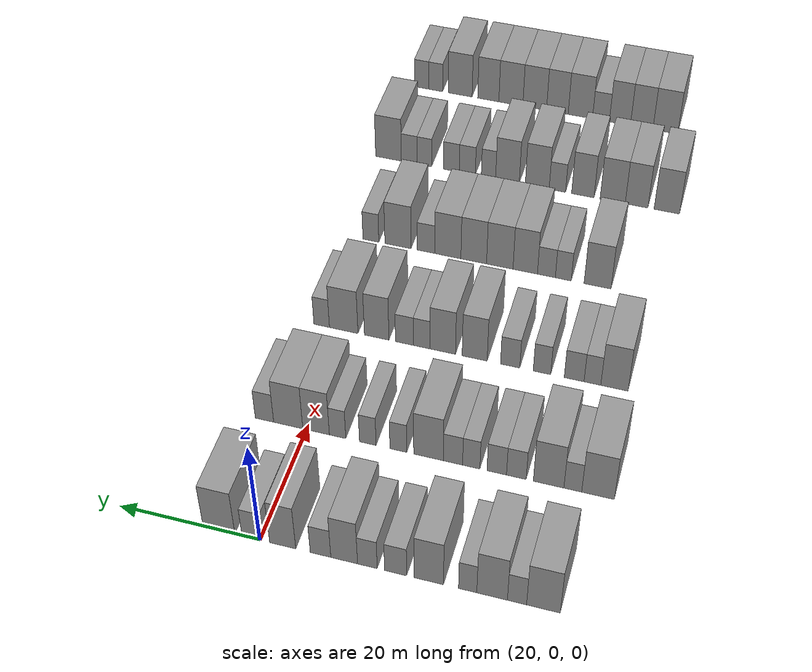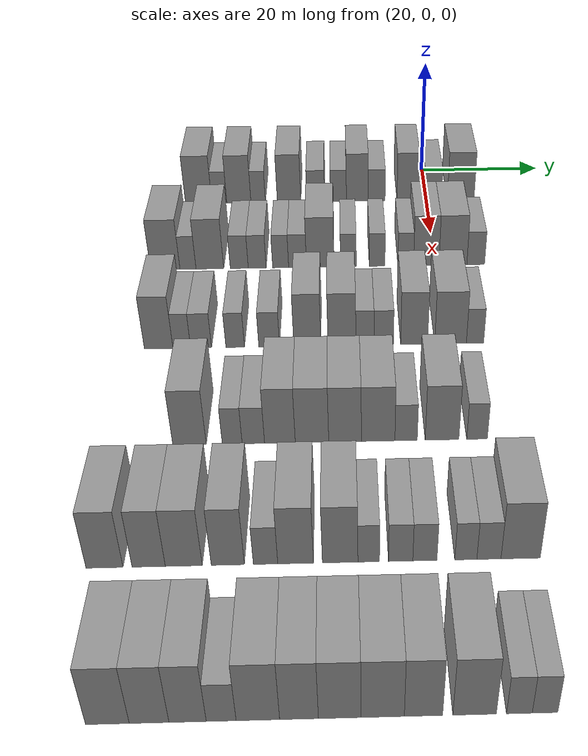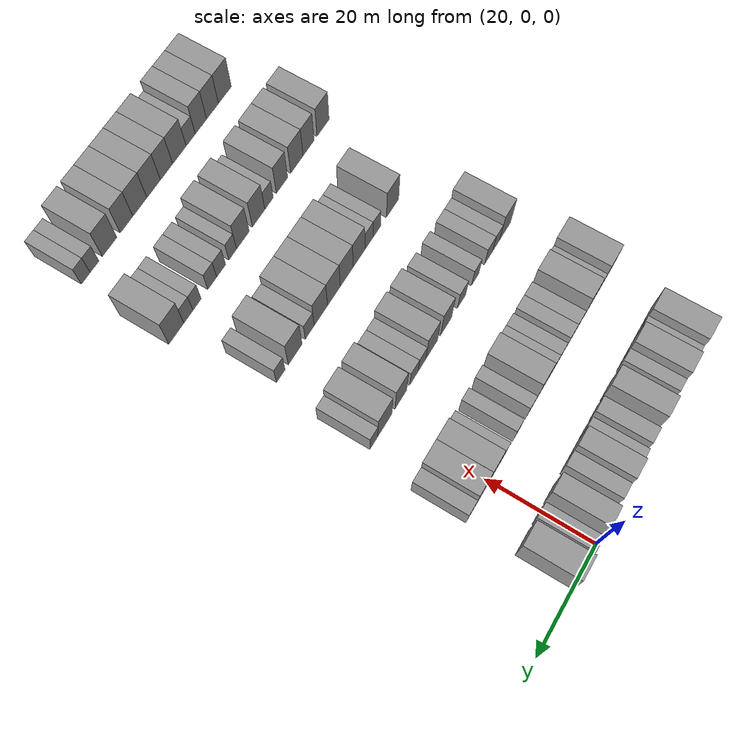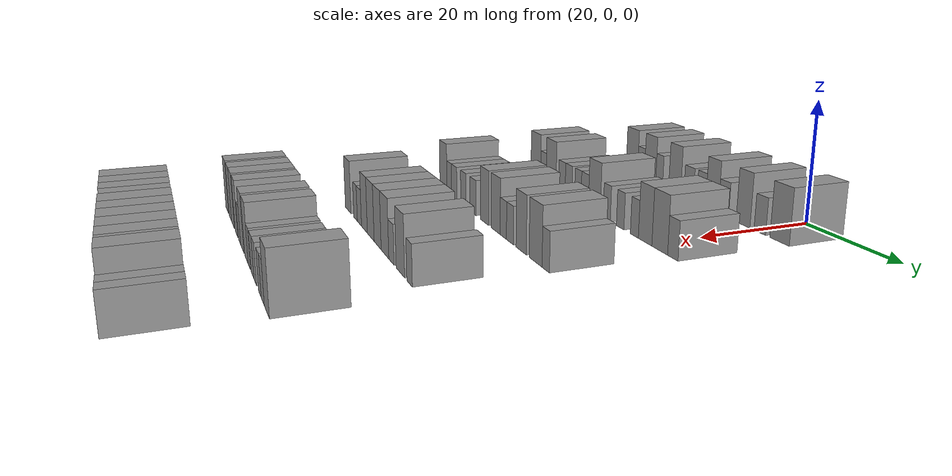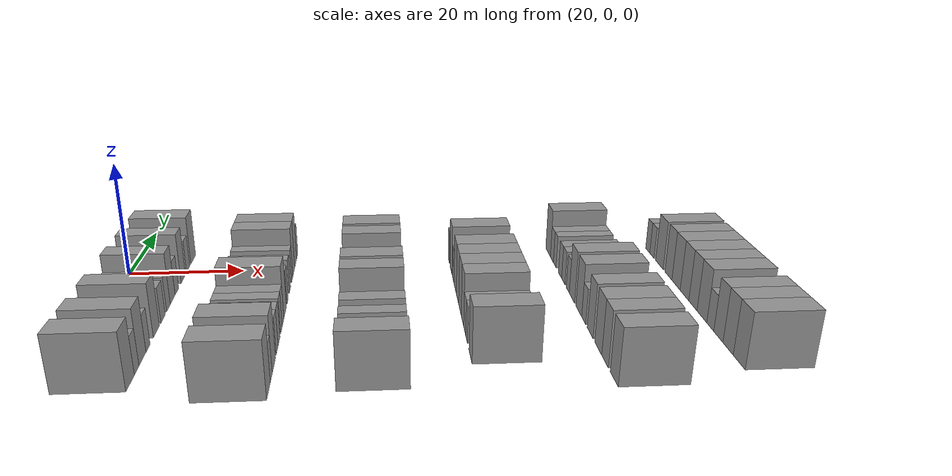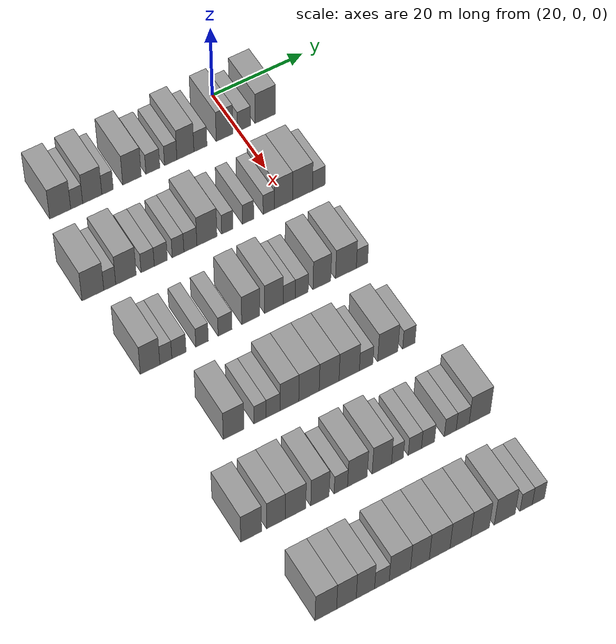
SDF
<sdf version="1.6">
 <world name="default">
  <model name="building_77">
   <static>1</static>
   <pose>25.0000 -38.1234 0 0.000000 0.000000 0.000000</pose>
   <link name="link">
    <pose>0 0 4.50 0 0 0</pose>
    <collision name="collision"><geometry><box><size>10.0000 4.3851 9.0000</size></box></geometry></collision>
    <visual name="visual">
     <cast_shadows>0</cast_shadows>
     <geometry><box><size>10.0000 4.3851 9.0000</size></box></geometry>
     <material>
      <script>
       <uri>model://grey_wall/materials/scripts</uri>
       <uri>model://grey_wall/materials/textures</uri>
       <name>vrc/grey_wall</name>
      </script>
     </material>
    </visual>
   </link>
  </model>
  <model name="building_78">
   <static>1</static>
   <pose>25.0000 -34.6785 0 0.000000 0.000000 0.000000</pose>
   <link name="link">
    <pose>0 0 3.00 0 0 0</pose>
    <collision name="collision"><geometry><box><size>10.0000 2.5047 6.0000</size></box></geometry></collision>
    <visual name="visual">
     <cast_shadows>0</cast_shadows>
     <geometry><box><size>10.0000 2.5047 6.0000</size></box></geometry>
     <material>
      <script>
       <uri>model://grey_wall/materials/scripts</uri>
       <uri>model://grey_wall/materials/textures</uri>
       <name>vrc/grey_wall</name>
      </script>
     </material>
    </visual>
   </link>
  </model>
  <model name="building_79">
   <static>1</static>
   <pose>25.0000 -31.4091 0 0.000000 0.000000 0.000000</pose>
   <link name="link">
    <pose>0 0 4.50 0 0 0</pose>
    <collision name="collision"><geometry><box><size>10.0000 4.0342 9.0000</size></box></geometry></collision>
    <visual name="visual">
     <cast_shadows>0</cast_shadows>
     <geometry><box><size>10.0000 4.0342 9.0000</size></box></geometry>
     <material>
      <script>
       <uri>model://grey_wall/materials/scripts</uri>
       <uri>model://grey_wall/materials/textures</uri>
       <name>vrc/grey_wall</name>
      </script>
     </material>
    </visual>
   </link>
  </model>
  <model name="building_80">
   <static>1</static>
   <pose>25.0000 -28.1832 0 0.000000 0.000000 0.000000</pose>
   <link name="link">
    <pose>0 0 3.00 0 0 0</pose>
    <collision name="collision"><geometry><box><size>10.0000 2.4177 6.0000</size></box></geometry></collision>
    <visual name="visual">
     <cast_shadows>0</cast_shadows>
     <geometry><box><size>10.0000 2.4177 6.0000</size></box></geometry>
     <material>
      <script>
       <uri>model://grey_wall/materials/scripts</uri>
       <uri>model://grey_wall/materials/textures</uri>
       <name>vrc/grey_wall</name>
      </script>
     </material>
    </visual>
   </link>
  </model>
  <model name="building_81">
   <static>1</static>
   <pose>25.0000 -23.0104 0 0.000000 0.000000 0.000000</pose>
   <link name="link">
    <pose>0 0 4.50 0 0 0</pose>
    <collision name="collision"><geometry><box><size>10.0000 3.9279 9.0000</size></box></geometry></collision>
    <visual name="visual">
     <cast_shadows>0</cast_shadows>
     <geometry><box><size>10.0000 3.9279 9.0000</size></box></geometry>
     <material>
      <script>
       <uri>model://grey_wall/materials/scripts</uri>
       <uri>model://grey_wall/materials/textures</uri>
       <name>vrc/grey_wall</name>
      </script>
     </material>
    </visual>
   </link>
  </model>
  <model name="building_82">
   <static>1</static>
   <pose>25.0000 -18.5566 0 0.000000 0.000000 0.000000</pose>
   <link name="link">
    <pose>0 0 3.00 0 0 0</pose>
    <collision name="collision"><geometry><box><size>10.0000 2.9796 6.0000</size></box></geometry></collision>
    <visual name="visual">
     <cast_shadows>0</cast_shadows>
     <geometry><box><size>10.0000 2.9796 6.0000</size></box></geometry>
     <material>
      <script>
       <uri>model://grey_wall/materials/scripts</uri>
       <uri>model://grey_wall/materials/textures</uri>
       <name>vrc/grey_wall</name>
      </script>
     </material>
    </visual>
   </link>
  </model>
  <model name="building_83">
   <static>1</static>
   <pose>25.0000 -14.7358 0 0.000000 0.000000 0.000000</pose>
   <link name="link">
    <pose>0 0 3.00 0 0 0</pose>
    <collision name="collision"><geometry><box><size>10.0000 2.6619 6.0000</size></box></geometry></collision>
    <visual name="visual">
     <cast_shadows>0</cast_shadows>
     <geometry><box><size>10.0000 2.6619 6.0000</size></box></geometry>
     <material>
      <script>
       <uri>model://grey_wall/materials/scripts</uri>
       <uri>model://grey_wall/materials/textures</uri>
       <name>vrc/grey_wall</name>
      </script>
     </material>
    </visual>
   </link>
  </model>
  <model name="building_84">
   <static>1</static>
   <pose>25.0000 -11.5752 0 0.000000 0.000000 0.000000</pose>
   <link name="link">
    <pose>0 0 4.50 0 0 0</pose>
    <collision name="collision"><geometry><box><size>10.0000 3.6592 9.0000</size></box></geometry></collision>
    <visual name="visual">
     <cast_shadows>0</cast_shadows>
     <geometry><box><size>10.0000 3.6592 9.0000</size></box></geometry>
     <material>
      <script>
       <uri>model://grey_wall/materials/scripts</uri>
       <uri>model://grey_wall/materials/textures</uri>
       <name>vrc/grey_wall</name>
      </script>
     </material>
    </visual>
   </link>
  </model>
  <model name="building_85">
   <static>1</static>
   <pose>25.0000 -8.3293 0 0.000000 0.000000 0.000000</pose>
   <link name="link">
    <pose>0 0 3.00 0 0 0</pose>
    <collision name="collision"><geometry><box><size>10.0000 2.8327 6.0000</size></box></geometry></collision>
    <visual name="visual">
     <cast_shadows>0</cast_shadows>
     <geometry><box><size>10.0000 2.8327 6.0000</size></box></geometry>
     <material>
      <script>
       <uri>model://grey_wall/materials/scripts</uri>
       <uri>model://grey_wall/materials/textures</uri>
       <name>vrc/grey_wall</name>
      </script>
     </material>
    </visual>
   </link>
  </model>
  <model name="building_86">
   <static>1</static>
   <pose>25.0000 -3.1027 0 0.000000 0.000000 0.000000</pose>
   <link name="link">
    <pose>0 0 4.50 0 0 0</pose>
    <collision name="collision"><geometry><box><size>10.0000 3.6206 9.0000</size></box></geometry></collision>
    <visual name="visual">
     <cast_shadows>0</cast_shadows>
     <geometry><box><size>10.0000 3.6206 9.0000</size></box></geometry>
     <material>
      <script>
       <uri>model://grey_wall/materials/scripts</uri>
       <uri>model://grey_wall/materials/textures</uri>
       <name>vrc/grey_wall</name>
      </script>
     </material>
    </visual>
   </link>
  </model>
  <model name="building_87">
   <static>1</static>
   <pose>25.0000 1.1421 0 0.000000 0.000000 0.000000</pose>
   <link name="link">
    <pose>0 0 3.00 0 0 0</pose>
    <collision name="collision"><geometry><box><size>10.0000 2.8690 6.0000</size></box></geometry></collision>
    <visual name="visual">
     <cast_shadows>0</cast_shadows>
     <geometry><box><size>10.0000 2.8690 6.0000</size></box></geometry>
     <material>
      <script>
       <uri>model://grey_wall/materials/scripts</uri>
       <uri>model://grey_wall/materials/textures</uri>
       <name>vrc/grey_wall</name>
      </script>
     </material>
    </visual>
   </link>
  </model>
  <model name="building_88">
   <static>1</static>
   <pose>25.0000 5.8203 0 0.000000 0.000000 0.000000</pose>
   <link name="link">
    <pose>0 0 4.50 0 0 0</pose>
    <collision name="collision"><geometry><box><size>10.0000 4.4875 9.0000</size></box></geometry></collision>
    <visual name="visual">
     <cast_shadows>0</cast_shadows>
     <geometry><box><size>10.0000 4.4875 9.0000</size></box></geometry>
     <material>
      <script>
       <uri>model://grey_wall/materials/scripts</uri>
       <uri>model://grey_wall/materials/textures</uri>
       <name>vrc/grey_wall</name>
      </script>
     </material>
    </visual>
   </link>
  </model>
  <model name="building_242">
   <static>1</static>
   <pose>44.0000 -41.3822 0 0.000000 0.000000 0.000000</pose>
   <link name="link">
    <pose>0 0 4.50 0 0 0</pose>
    <collision name="collision"><geometry><box><size>10.0000 4.4811 9.0000</size></box></geometry></collision>
    <visual name="visual">
     <cast_shadows>0</cast_shadows>
     <geometry><box><size>10.0000 4.4811 9.0000</size></box></geometry>
     <material>
      <script>
       <uri>model://grey_wall/materials/scripts</uri>
       <uri>model://grey_wall/materials/textures</uri>
       <name>vrc/grey_wall</name>
      </script>
     </material>
    </visual>
   </link>
  </model>
  <model name="building_243">
   <static>1</static>
   <pose>44.0000 -37.9151 0 0.000000 0.000000 0.000000</pose>
   <link name="link">
    <pose>0 0 3.00 0 0 0</pose>
    <collision name="collision"><geometry><box><size>10.0000 2.4532 6.0000</size></box></geometry></collision>
    <visual name="visual">
     <cast_shadows>0</cast_shadows>
     <geometry><box><size>10.0000 2.4532 6.0000</size></box></geometry>
     <material>
      <script>
       <uri>model://grey_wall/materials/scripts</uri>
       <uri>model://grey_wall/materials/textures</uri>
       <name>vrc/grey_wall</name>
      </script>
     </material>
    </visual>
   </link>
  </model>
  <model name="building_244">
   <static>1</static>
   <pose>44.0000 -34.5697 0 0.000000 0.000000 0.000000</pose>
   <link name="link">
    <pose>0 0 4.50 0 0 0</pose>
    <collision name="collision"><geometry><box><size>10.0000 4.2376 9.0000</size></box></geometry></collision>
    <visual name="visual">
     <cast_shadows>0</cast_shadows>
     <geometry><box><size>10.0000 4.2376 9.0000</size></box></geometry>
     <material>
      <script>
       <uri>model://grey_wall/materials/scripts</uri>
       <uri>model://grey_wall/materials/textures</uri>
       <name>vrc/grey_wall</name>
      </script>
     </material>
    </visual>
   </link>
  </model>
  <model name="building_245">
   <static>1</static>
   <pose>44.0000 -30.0746 0 0.000000 0.000000 0.000000</pose>
   <link name="link">
    <pose>0 0 3.00 0 0 0</pose>
    <collision name="collision"><geometry><box><size>10.0000 2.7525 6.0000</size></box></geometry></collision>
    <visual name="visual">
     <cast_shadows>0</cast_shadows>
     <geometry><box><size>10.0000 2.7525 6.0000</size></box></geometry>
     <material>
      <script>
       <uri>model://grey_wall/materials/scripts</uri>
       <uri>model://grey_wall/materials/textures</uri>
       <name>vrc/grey_wall</name>
      </script>
     </material>
    </visual>
   </link>
  </model>
  <model name="building_246">
   <static>1</static>
   <pose>44.0000 -27.3279 0 0.000000 0.000000 0.000000</pose>
   <link name="link">
    <pose>0 0 3.00 0 0 0</pose>
    <collision name="collision"><geometry><box><size>10.0000 2.7408 6.0000</size></box></geometry></collision>
    <visual name="visual">
     <cast_shadows>0</cast_shadows>
     <geometry><box><size>10.0000 2.7408 6.0000</size></box></geometry>
     <material>
      <script>
       <uri>model://grey_wall/materials/scripts</uri>
       <uri>model://grey_wall/materials/textures</uri>
       <name>vrc/grey_wall</name>
      </script>
     </material>
    </visual>
   </link>
  </model>
  <model name="building_247">
   <static>1</static>
   <pose>44.0000 -23.7330 0 0.000000 0.000000 0.000000</pose>
   <link name="link">
    <pose>0 0 3.00 0 0 0</pose>
    <collision name="collision"><geometry><box><size>10.0000 2.4491 6.0000</size></box></geometry></collision>
    <visual name="visual">
     <cast_shadows>0</cast_shadows>
     <geometry><box><size>10.0000 2.4491 6.0000</size></box></geometry>
     <material>
      <script>
       <uri>model://grey_wall/materials/scripts</uri>
       <uri>model://grey_wall/materials/textures</uri>
       <name>vrc/grey_wall</name>
      </script>
     </material>
    </visual>
   </link>
  </model>
  <model name="building_248">
   <static>1</static>
   <pose>44.0000 -21.1385 0 0.000000 0.000000 0.000000</pose>
   <link name="link">
    <pose>0 0 3.00 0 0 0</pose>
    <collision name="collision"><geometry><box><size>10.0000 2.7399 6.0000</size></box></geometry></collision>
    <visual name="visual">
     <cast_shadows>0</cast_shadows>
     <geometry><box><size>10.0000 2.7399 6.0000</size></box></geometry>
     <material>
      <script>
       <uri>model://grey_wall/materials/scripts</uri>
       <uri>model://grey_wall/materials/textures</uri>
       <name>vrc/grey_wall</name>
      </script>
     </material>
    </visual>
   </link>
  </model>
  <model name="building_249">
   <static>1</static>
   <pose>44.0000 -17.6541 0 0.000000 0.000000 0.000000</pose>
   <link name="link">
    <pose>0 0 4.50 0 0 0</pose>
    <collision name="collision"><geometry><box><size>10.0000 4.2288 9.0000</size></box></geometry></collision>
    <visual name="visual">
     <cast_shadows>0</cast_shadows>
     <geometry><box><size>10.0000 4.2288 9.0000</size></box></geometry>
     <material>
      <script>
       <uri>model://grey_wall/materials/scripts</uri>
       <uri>model://grey_wall/materials/textures</uri>
       <name>vrc/grey_wall</name>
      </script>
     </material>
    </visual>
   </link>
  </model>
  <model name="building_250">
   <static>1</static>
   <pose>44.0000 -13.3273 0 0.000000 0.000000 0.000000</pose>
   <link name="link">
    <pose>0 0 3.00 0 0 0</pose>
    <collision name="collision"><geometry><box><size>10.0000 2.4249 6.0000</size></box></geometry></collision>
    <visual name="visual">
     <cast_shadows>0</cast_shadows>
     <geometry><box><size>10.0000 2.4249 6.0000</size></box></geometry>
     <material>
      <script>
       <uri>model://grey_wall/materials/scripts</uri>
       <uri>model://grey_wall/materials/textures</uri>
       <name>vrc/grey_wall</name>
      </script>
     </material>
    </visual>
   </link>
  </model>
  <model name="building_251">
   <static>1</static>
   <pose>44.0000 -8.9117 0 0.000000 0.000000 0.000000</pose>
   <link name="link">
    <pose>0 0 3.00 0 0 0</pose>
    <collision name="collision"><geometry><box><size>10.0000 2.4062 6.0000</size></box></geometry></collision>
    <visual name="visual">
     <cast_shadows>0</cast_shadows>
     <geometry><box><size>10.0000 2.4062 6.0000</size></box></geometry>
     <material>
      <script>
       <uri>model://grey_wall/materials/scripts</uri>
       <uri>model://grey_wall/materials/textures</uri>
       <name>vrc/grey_wall</name>
      </script>
     </material>
    </visual>
   </link>
  </model>
  <model name="building_252">
   <static>1</static>
   <pose>44.0000 -4.5066 0 0.000000 0.000000 0.000000</pose>
   <link name="link">
    <pose>0 0 3.00 0 0 0</pose>
    <collision name="collision"><geometry><box><size>10.0000 2.4039 6.0000</size></box></geometry></collision>
    <visual name="visual">
     <cast_shadows>0</cast_shadows>
     <geometry><box><size>10.0000 2.4039 6.0000</size></box></geometry>
     <material>
      <script>
       <uri>model://grey_wall/materials/scripts</uri>
       <uri>model://grey_wall/materials/textures</uri>
       <name>vrc/grey_wall</name>
      </script>
     </material>
    </visual>
   </link>
  </model>
  <model name="building_253">
   <static>1</static>
   <pose>44.0000 -1.3485 0 0.000000 0.000000 0.000000</pose>
   <link name="link">
    <pose>0 0 4.50 0 0 0</pose>
    <collision name="collision"><geometry><box><size>10.0000 3.9124 9.0000</size></box></geometry></collision>
    <visual name="visual">
     <cast_shadows>0</cast_shadows>
     <geometry><box><size>10.0000 3.9124 9.0000</size></box></geometry>
     <material>
      <script>
       <uri>model://grey_wall/materials/scripts</uri>
       <uri>model://grey_wall/materials/textures</uri>
       <name>vrc/grey_wall</name>
      </script>
     </material>
    </visual>
   </link>
  </model>
  <model name="building_254">
   <static>1</static>
   <pose>44.0000 2.7650 0 0.000000 0.000000 0.000000</pose>
   <link name="link">
    <pose>0 0 4.50 0 0 0</pose>
    <collision name="collision"><geometry><box><size>10.0000 4.3145 9.0000</size></box></geometry></collision>
    <visual name="visual">
     <cast_shadows>0</cast_shadows>
     <geometry><box><size>10.0000 4.3145 9.0000</size></box></geometry>
     <material>
      <script>
       <uri>model://grey_wall/materials/scripts</uri>
       <uri>model://grey_wall/materials/textures</uri>
       <name>vrc/grey_wall</name>
      </script>
     </material>
    </visual>
   </link>
  </model>
  <model name="building_255">
   <static>1</static>
   <pose>44.0000 6.2912 0 0.000000 0.000000 0.000000</pose>
   <link name="link">
    <pose>0 0 3.00 0 0 0</pose>
    <collision name="collision"><geometry><box><size>10.0000 2.7380 6.0000</size></box></geometry></collision>
    <visual name="visual">
     <cast_shadows>0</cast_shadows>
     <geometry><box><size>10.0000 2.7380 6.0000</size></box></geometry>
     <material>
      <script>
       <uri>model://grey_wall/materials/scripts</uri>
       <uri>model://grey_wall/materials/textures</uri>
       <name>vrc/grey_wall</name>
      </script>
     </material>
    </visual>
   </link>
  </model>
  <model name="building_420">
   <static>1</static>
   <pose>63.0000 -39.9859 0 0.000000 0.000000 0.000000</pose>
   <link name="link">
    <pose>0 0 4.50 0 0 0</pose>
    <collision name="collision"><geometry><box><size>10.0000 3.9625 9.0000</size></box></geometry></collision>
    <visual name="visual">
     <cast_shadows>0</cast_shadows>
     <geometry><box><size>10.0000 3.9625 9.0000</size></box></geometry>
     <material>
      <script>
       <uri>model://grey_wall/materials/scripts</uri>
       <uri>model://grey_wall/materials/textures</uri>
       <name>vrc/grey_wall</name>
      </script>
     </material>
    </visual>
   </link>
  </model>
  <model name="building_421">
   <static>1</static>
   <pose>63.0000 -36.7809 0 0.000000 0.000000 0.000000</pose>
   <link name="link">
    <pose>0 0 3.00 0 0 0</pose>
    <collision name="collision"><geometry><box><size>10.0000 2.4475 6.0000</size></box></geometry></collision>
    <visual name="visual">
     <cast_shadows>0</cast_shadows>
     <geometry><box><size>10.0000 2.4475 6.0000</size></box></geometry>
     <material>
      <script>
       <uri>model://grey_wall/materials/scripts</uri>
       <uri>model://grey_wall/materials/textures</uri>
       <name>vrc/grey_wall</name>
      </script>
     </material>
    </visual>
   </link>
  </model>
  <model name="building_422">
   <static>1</static>
   <pose>63.0000 -34.1074 0 0.000000 0.000000 0.000000</pose>
   <link name="link">
    <pose>0 0 3.00 0 0 0</pose>
    <collision name="collision"><geometry><box><size>10.0000 2.8996 6.0000</size></box></geometry></collision>
    <visual name="visual">
     <cast_shadows>0</cast_shadows>
     <geometry><box><size>10.0000 2.8996 6.0000</size></box></geometry>
     <material>
      <script>
       <uri>model://grey_wall/materials/scripts</uri>
       <uri>model://grey_wall/materials/textures</uri>
       <name>vrc/grey_wall</name>
      </script>
     </material>
    </visual>
   </link>
  </model>
  <model name="building_423">
   <static>1</static>
   <pose>63.0000 -29.3668 0 0.000000 0.000000 0.000000</pose>
   <link name="link">
    <pose>0 0 3.00 0 0 0</pose>
    <collision name="collision"><geometry><box><size>10.0000 2.5815 6.0000</size></box></geometry></collision>
    <visual name="visual">
     <cast_shadows>0</cast_shadows>
     <geometry><box><size>10.0000 2.5815 6.0000</size></box></geometry>
     <material>
      <script>
       <uri>model://grey_wall/materials/scripts</uri>
       <uri>model://grey_wall/materials/textures</uri>
       <name>vrc/grey_wall</name>
      </script>
     </material>
    </visual>
   </link>
  </model>
  <model name="building_424">
   <static>1</static>
   <pose>63.0000 -24.6372 0 0.000000 0.000000 0.000000</pose>
   <link name="link">
    <pose>0 0 3.00 0 0 0</pose>
    <collision name="collision"><geometry><box><size>10.0000 2.8778 6.0000</size></box></geometry></collision>
    <visual name="visual">
     <cast_shadows>0</cast_shadows>
     <geometry><box><size>10.0000 2.8778 6.0000</size></box></geometry>
     <material>
      <script>
       <uri>model://grey_wall/materials/scripts</uri>
       <uri>model://grey_wall/materials/textures</uri>
       <name>vrc/grey_wall</name>
      </script>
     </material>
    </visual>
   </link>
  </model>
  <model name="building_425">
   <static>1</static>
   <pose>63.0000 -19.3167 0 0.000000 0.000000 0.000000</pose>
   <link name="link">
    <pose>0 0 4.50 0 0 0</pose>
    <collision name="collision"><geometry><box><size>10.0000 3.7631 9.0000</size></box></geometry></collision>
    <visual name="visual">
     <cast_shadows>0</cast_shadows>
     <geometry><box><size>10.0000 3.7631 9.0000</size></box></geometry>
     <material>
      <script>
       <uri>model://grey_wall/materials/scripts</uri>
       <uri>model://grey_wall/materials/textures</uri>
       <name>vrc/grey_wall</name>
      </script>
     </material>
    </visual>
   </link>
  </model>
  <model name="building_426">
   <static>1</static>
   <pose>63.0000 -14.4906 0 0.000000 0.000000 0.000000</pose>
   <link name="link">
    <pose>0 0 4.50 0 0 0</pose>
    <collision name="collision"><geometry><box><size>10.0000 3.8891 9.0000</size></box></geometry></collision>
    <visual name="visual">
     <cast_shadows>0</cast_shadows>
     <geometry><box><size>10.0000 3.8891 9.0000</size></box></geometry>
     <material>
      <script>
       <uri>model://grey_wall/materials/scripts</uri>
       <uri>model://grey_wall/materials/textures</uri>
       <name>vrc/grey_wall</name>
      </script>
     </material>
    </visual>
   </link>
  </model>
  <model name="building_427">
   <static>1</static>
   <pose>63.0000 -11.2849 0 0.000000 0.000000 0.000000</pose>
   <link name="link">
    <pose>0 0 3.00 0 0 0</pose>
    <collision name="collision"><geometry><box><size>10.0000 2.5223 6.0000</size></box></geometry></collision>
    <visual name="visual">
     <cast_shadows>0</cast_shadows>
     <geometry><box><size>10.0000 2.5223 6.0000</size></box></geometry>
     <material>
      <script>
       <uri>model://grey_wall/materials/scripts</uri>
       <uri>model://grey_wall/materials/textures</uri>
       <name>vrc/grey_wall</name>
      </script>
     </material>
    </visual>
   </link>
  </model>
  <model name="building_428">
   <static>1</static>
   <pose>63.0000 -8.6567 0 0.000000 0.000000 0.000000</pose>
   <link name="link">
    <pose>0 0 3.00 0 0 0</pose>
    <collision name="collision"><geometry><box><size>10.0000 2.7342 6.0000</size></box></geometry></collision>
    <visual name="visual">
     <cast_shadows>0</cast_shadows>
     <geometry><box><size>10.0000 2.7342 6.0000</size></box></geometry>
     <material>
      <script>
       <uri>model://grey_wall/materials/scripts</uri>
       <uri>model://grey_wall/materials/textures</uri>
       <name>vrc/grey_wall</name>
      </script>
     </material>
    </visual>
   </link>
  </model>
  <model name="building_429">
   <static>1</static>
   <pose>63.0000 -4.4032 0 0.000000 0.000000 0.000000</pose>
   <link name="link">
    <pose>0 0 4.50 0 0 0</pose>
    <collision name="collision"><geometry><box><size>10.0000 3.7728 9.0000</size></box></geometry></collision>
    <visual name="visual">
     <cast_shadows>0</cast_shadows>
     <geometry><box><size>10.0000 3.7728 9.0000</size></box></geometry>
     <material>
      <script>
       <uri>model://grey_wall/materials/scripts</uri>
       <uri>model://grey_wall/materials/textures</uri>
       <name>vrc/grey_wall</name>
      </script>
     </material>
    </visual>
   </link>
  </model>
  <model name="building_430">
   <static>1</static>
   <pose>63.0000 0.7044 0 0.000000 0.000000 0.000000</pose>
   <link name="link">
    <pose>0 0 4.50 0 0 0</pose>
    <collision name="collision"><geometry><box><size>10.0000 4.4423 9.0000</size></box></geometry></collision>
    <visual name="visual">
     <cast_shadows>0</cast_shadows>
     <geometry><box><size>10.0000 4.4423 9.0000</size></box></geometry>
     <material>
      <script>
       <uri>model://grey_wall/materials/scripts</uri>
       <uri>model://grey_wall/materials/textures</uri>
       <name>vrc/grey_wall</name>
      </script>
     </material>
    </visual>
   </link>
  </model>
  <model name="building_431">
   <static>1</static>
   <pose>63.0000 4.1381 0 0.000000 0.000000 0.000000</pose>
   <link name="link">
    <pose>0 0 3.00 0 0 0</pose>
    <collision name="collision"><geometry><box><size>10.0000 2.4251 6.0000</size></box></geometry></collision>
    <visual name="visual">
     <cast_shadows>0</cast_shadows>
     <geometry><box><size>10.0000 2.4251 6.0000</size></box></geometry>
     <material>
      <script>
       <uri>model://grey_wall/materials/scripts</uri>
       <uri>model://grey_wall/materials/textures</uri>
       <name>vrc/grey_wall</name>
      </script>
     </material>
    </visual>
   </link>
  </model>
  <model name="building_588">
   <static>1</static>
   <pose>82.0000 -33.7430 0 0.000000 0.000000 0.000000</pose>
   <link name="link">
    <pose>0 0 4.50 0 0 0</pose>
    <collision name="collision"><geometry><box><size>10.0000 4.1766 9.0000</size></box></geometry></collision>
    <visual name="visual">
     <cast_shadows>0</cast_shadows>
     <geometry><box><size>10.0000 4.1766 9.0000</size></box></geometry>
     <material>
      <script>
       <uri>model://grey_wall/materials/scripts</uri>
       <uri>model://grey_wall/materials/textures</uri>
       <name>vrc/grey_wall</name>
      </script>
     </material>
    </visual>
   </link>
  </model>
  <model name="building_589">
   <static>1</static>
   <pose>82.0000 -28.4143 0 0.000000 0.000000 0.000000</pose>
   <link name="link">
    <pose>0 0 3.00 0 0 0</pose>
    <collision name="collision"><geometry><box><size>10.0000 2.4808 6.0000</size></box></geometry></collision>
    <visual name="visual">
     <cast_shadows>0</cast_shadows>
     <geometry><box><size>10.0000 2.4808 6.0000</size></box></geometry>
     <material>
      <script>
       <uri>model://grey_wall/materials/scripts</uri>
       <uri>model://grey_wall/materials/textures</uri>
       <name>vrc/grey_wall</name>
      </script>
     </material>
    </visual>
   </link>
  </model>
  <model name="building_590">
   <static>1</static>
   <pose>82.0000 -25.7703 0 0.000000 0.000000 0.000000</pose>
   <link name="link">
    <pose>0 0 3.00 0 0 0</pose>
    <collision name="collision"><geometry><box><size>10.0000 2.8072 6.0000</size></box></geometry></collision>
    <visual name="visual">
     <cast_shadows>0</cast_shadows>
     <geometry><box><size>10.0000 2.8072 6.0000</size></box></geometry>
     <material>
      <script>
       <uri>model://grey_wall/materials/scripts</uri>
       <uri>model://grey_wall/materials/textures</uri>
       <name>vrc/grey_wall</name>
      </script>
     </material>
    </visual>
   </link>
  </model>
  <model name="building_591">
   <static>1</static>
   <pose>82.0000 -22.4436 0 0.000000 0.000000 0.000000</pose>
   <link name="link">
    <pose>0 0 4.50 0 0 0</pose>
    <collision name="collision"><geometry><box><size>10.0000 3.8463 9.0000</size></box></geometry></collision>
    <visual name="visual">
     <cast_shadows>0</cast_shadows>
     <geometry><box><size>10.0000 3.8463 9.0000</size></box></geometry>
     <material>
      <script>
       <uri>model://grey_wall/materials/scripts</uri>
       <uri>model://grey_wall/materials/textures</uri>
       <name>vrc/grey_wall</name>
      </script>
     </material>
    </visual>
   </link>
  </model>
  <model name="building_592">
   <static>1</static>
   <pose>82.0000 -18.4230 0 0.000000 0.000000 0.000000</pose>
   <link name="link">
    <pose>0 0 4.50 0 0 0</pose>
    <collision name="collision"><geometry><box><size>10.0000 4.1948 9.0000</size></box></geometry></collision>
    <visual name="visual">
     <cast_shadows>0</cast_shadows>
     <geometry><box><size>10.0000 4.1948 9.0000</size></box></geometry>
     <material>
      <script>
       <uri>model://grey_wall/materials/scripts</uri>
       <uri>model://grey_wall/materials/textures</uri>
       <name>vrc/grey_wall</name>
      </script>
     </material>
    </visual>
   </link>
  </model>
  <model name="building_593">
   <static>1</static>
   <pose>82.0000 -14.2781 0 0.000000 0.000000 0.000000</pose>
   <link name="link">
    <pose>0 0 4.50 0 0 0</pose>
    <collision name="collision"><geometry><box><size>10.0000 4.0950 9.0000</size></box></geometry></collision>
    <visual name="visual">
     <cast_shadows>0</cast_shadows>
     <geometry><box><size>10.0000 4.0950 9.0000</size></box></geometry>
     <material>
      <script>
       <uri>model://grey_wall/materials/scripts</uri>
       <uri>model://grey_wall/materials/textures</uri>
       <name>vrc/grey_wall</name>
      </script>
     </material>
    </visual>
   </link>
  </model>
  <model name="building_594">
   <static>1</static>
   <pose>82.0000 -10.1192 0 0.000000 0.000000 0.000000</pose>
   <link name="link">
    <pose>0 0 4.50 0 0 0</pose>
    <collision name="collision"><geometry><box><size>10.0000 4.2227 9.0000</size></box></geometry></collision>
    <visual name="visual">
     <cast_shadows>0</cast_shadows>
     <geometry><box><size>10.0000 4.2227 9.0000</size></box></geometry>
     <material>
      <script>
       <uri>model://grey_wall/materials/scripts</uri>
       <uri>model://grey_wall/materials/textures</uri>
       <name>vrc/grey_wall</name>
      </script>
     </material>
    </visual>
   </link>
  </model>
  <model name="building_595">
   <static>1</static>
   <pose>82.0000 -6.6034 0 0.000000 0.000000 0.000000</pose>
   <link name="link">
    <pose>0 0 3.00 0 0 0</pose>
    <collision name="collision"><geometry><box><size>10.0000 2.8090 6.0000</size></box></geometry></collision>
    <visual name="visual">
     <cast_shadows>0</cast_shadows>
     <geometry><box><size>10.0000 2.8090 6.0000</size></box></geometry>
     <material>
      <script>
       <uri>model://grey_wall/materials/scripts</uri>
       <uri>model://grey_wall/materials/textures</uri>
       <name>vrc/grey_wall</name>
      </script>
     </material>
    </visual>
   </link>
  </model>
  <model name="building_596">
   <static>1</static>
   <pose>82.0000 -2.0756 0 0.000000 0.000000 0.000000</pose>
   <link name="link">
    <pose>0 0 4.50 0 0 0</pose>
    <collision name="collision"><geometry><box><size>10.0000 4.2466 9.0000</size></box></geometry></collision>
    <visual name="visual">
     <cast_shadows>0</cast_shadows>
     <geometry><box><size>10.0000 4.2466 9.0000</size></box></geometry>
     <material>
      <script>
       <uri>model://grey_wall/materials/scripts</uri>
       <uri>model://grey_wall/materials/textures</uri>
       <name>vrc/grey_wall</name>
      </script>
     </material>
    </visual>
   </link>
  </model>
  <model name="building_597">
   <static>1</static>
   <pose>82.0000 2.3453 0 0.000000 0.000000 0.000000</pose>
   <link name="link">
    <pose>0 0 3.00 0 0 0</pose>
    <collision name="collision"><geometry><box><size>10.0000 2.5951 6.0000</size></box></geometry></collision>
    <visual name="visual">
     <cast_shadows>0</cast_shadows>
     <geometry><box><size>10.0000 2.5951 6.0000</size></box></geometry>
     <material>
      <script>
       <uri>model://grey_wall/materials/scripts</uri>
       <uri>model://grey_wall/materials/textures</uri>
       <name>vrc/grey_wall</name>
      </script>
     </material>
    </visual>
   </link>
  </model>
  <model name="building_739">
   <static>1</static>
   <pose>101.0000 -41.1780 0 0.000000 0.000000 0.000000</pose>
   <link name="link">
    <pose>0 0 4.50 0 0 0</pose>
    <collision name="collision"><geometry><box><size>10.0000 4.0862 9.0000</size></box></geometry></collision>
    <visual name="visual">
     <cast_shadows>0</cast_shadows>
     <geometry><box><size>10.0000 4.0862 9.0000</size></box></geometry>
     <material>
      <script>
       <uri>model://grey_wall/materials/scripts</uri>
       <uri>model://grey_wall/materials/textures</uri>
       <name>vrc/grey_wall</name>
      </script>
     </material>
    </visual>
   </link>
  </model>
  <model name="building_740">
   <static>1</static>
   <pose>101.0000 -36.2970 0 0.000000 0.000000 0.000000</pose>
   <link name="link">
    <pose>0 0 4.50 0 0 0</pose>
    <collision name="collision"><geometry><box><size>10.0000 3.6758 9.0000</size></box></geometry></collision>
    <visual name="visual">
     <cast_shadows>0</cast_shadows>
     <geometry><box><size>10.0000 3.6758 9.0000</size></box></geometry>
     <material>
      <script>
       <uri>model://grey_wall/materials/scripts</uri>
       <uri>model://grey_wall/materials/textures</uri>
       <name>vrc/grey_wall</name>
      </script>
     </material>
    </visual>
   </link>
  </model>
  <model name="building_741">
   <static>1</static>
   <pose>101.0000 -32.4134 0 0.000000 0.000000 0.000000</pose>
   <link name="link">
    <pose>0 0 4.50 0 0 0</pose>
    <collision name="collision"><geometry><box><size>10.0000 4.0914 9.0000</size></box></geometry></collision>
    <visual name="visual">
     <cast_shadows>0</cast_shadows>
     <geometry><box><size>10.0000 4.0914 9.0000</size></box></geometry>
     <material>
      <script>
       <uri>model://grey_wall/materials/scripts</uri>
       <uri>model://grey_wall/materials/textures</uri>
       <name>vrc/grey_wall</name>
      </script>
     </material>
    </visual>
   </link>
  </model>
  <model name="building_742">
   <static>1</static>
   <pose>101.0000 -27.5302 0 0.000000 0.000000 0.000000</pose>
   <link name="link">
    <pose>0 0 4.50 0 0 0</pose>
    <collision name="collision"><geometry><box><size>10.0000 3.6751 9.0000</size></box></geometry></collision>
    <visual name="visual">
     <cast_shadows>0</cast_shadows>
     <geometry><box><size>10.0000 3.6751 9.0000</size></box></geometry>
     <material>
      <script>
       <uri>model://grey_wall/materials/scripts</uri>
       <uri>model://grey_wall/materials/textures</uri>
       <name>vrc/grey_wall</name>
      </script>
     </material>
    </visual>
   </link>
  </model>
  <model name="building_743">
   <static>1</static>
   <pose>101.0000 -23.3384 0 0.000000 0.000000 0.000000</pose>
   <link name="link">
    <pose>0 0 3.00 0 0 0</pose>
    <collision name="collision"><geometry><box><size>10.0000 2.7087 6.0000</size></box></geometry></collision>
    <visual name="visual">
     <cast_shadows>0</cast_shadows>
     <geometry><box><size>10.0000 2.7087 6.0000</size></box></geometry>
     <material>
      <script>
       <uri>model://grey_wall/materials/scripts</uri>
       <uri>model://grey_wall/materials/textures</uri>
       <name>vrc/grey_wall</name>
      </script>
     </material>
    </visual>
   </link>
  </model>
  <model name="building_744">
   <static>1</static>
   <pose>101.0000 -19.9992 0 0.000000 0.000000 0.000000</pose>
   <link name="link">
    <pose>0 0 4.50 0 0 0</pose>
    <collision name="collision"><geometry><box><size>10.0000 3.9698 9.0000</size></box></geometry></collision>
    <visual name="visual">
     <cast_shadows>0</cast_shadows>
     <geometry><box><size>10.0000 3.9698 9.0000</size></box></geometry>
     <material>
      <script>
       <uri>model://grey_wall/materials/scripts</uri>
       <uri>model://grey_wall/materials/textures</uri>
       <name>vrc/grey_wall</name>
      </script>
     </material>
    </visual>
   </link>
  </model>
  <model name="building_745">
   <static>1</static>
   <pose>101.0000 -15.0355 0 0.000000 0.000000 0.000000</pose>
   <link name="link">
    <pose>0 0 4.50 0 0 0</pose>
    <collision name="collision"><geometry><box><size>10.0000 3.9576 9.0000</size></box></geometry></collision>
    <visual name="visual">
     <cast_shadows>0</cast_shadows>
     <geometry><box><size>10.0000 3.9576 9.0000</size></box></geometry>
     <material>
      <script>
       <uri>model://grey_wall/materials/scripts</uri>
       <uri>model://grey_wall/materials/textures</uri>
       <name>vrc/grey_wall</name>
      </script>
     </material>
    </visual>
   </link>
  </model>
  <model name="building_746">
   <static>1</static>
   <pose>101.0000 -11.8532 0 0.000000 0.000000 0.000000</pose>
   <link name="link">
    <pose>0 0 3.00 0 0 0</pose>
    <collision name="collision"><geometry><box><size>10.0000 2.4070 6.0000</size></box></geometry></collision>
    <visual name="visual">
     <cast_shadows>0</cast_shadows>
     <geometry><box><size>10.0000 2.4070 6.0000</size></box></geometry>
     <material>
      <script>
       <uri>model://grey_wall/materials/scripts</uri>
       <uri>model://grey_wall/materials/textures</uri>
       <name>vrc/grey_wall</name>
      </script>
     </material>
    </visual>
   </link>
  </model>
  <model name="building_747">
   <static>1</static>
   <pose>101.0000 -8.2887 0 0.000000 0.000000 0.000000</pose>
   <link name="link">
    <pose>0 0 3.00 0 0 0</pose>
    <collision name="collision"><geometry><box><size>10.0000 2.7219 6.0000</size></box></geometry></collision>
    <visual name="visual">
     <cast_shadows>0</cast_shadows>
     <geometry><box><size>10.0000 2.7219 6.0000</size></box></geometry>
     <material>
      <script>
       <uri>model://grey_wall/materials/scripts</uri>
       <uri>model://grey_wall/materials/textures</uri>
       <name>vrc/grey_wall</name>
      </script>
     </material>
    </visual>
   </link>
  </model>
  <model name="building_748">
   <static>1</static>
   <pose>101.0000 -5.5770 0 0.000000 0.000000 0.000000</pose>
   <link name="link">
    <pose>0 0 3.00 0 0 0</pose>
    <collision name="collision"><geometry><box><size>10.0000 2.7016 6.0000</size></box></geometry></collision>
    <visual name="visual">
     <cast_shadows>0</cast_shadows>
     <geometry><box><size>10.0000 2.7016 6.0000</size></box></geometry>
     <material>
      <script>
       <uri>model://grey_wall/materials/scripts</uri>
       <uri>model://grey_wall/materials/textures</uri>
       <name>vrc/grey_wall</name>
      </script>
     </material>
    </visual>
   </link>
  </model>
  <model name="building_749">
   <static>1</static>
   <pose>101.0000 -0.9923 0 0.000000 0.000000 0.000000</pose>
   <link name="link">
    <pose>0 0 3.00 0 0 0</pose>
    <collision name="collision"><geometry><box><size>10.0000 2.4677 6.0000</size></box></geometry></collision>
    <visual name="visual">
     <cast_shadows>0</cast_shadows>
     <geometry><box><size>10.0000 2.4677 6.0000</size></box></geometry>
     <material>
      <script>
       <uri>model://grey_wall/materials/scripts</uri>
       <uri>model://grey_wall/materials/textures</uri>
       <name>vrc/grey_wall</name>
      </script>
     </material>
    </visual>
   </link>
  </model>
  <model name="building_750">
   <static>1</static>
   <pose>101.0000 1.5946 0 0.000000 0.000000 0.000000</pose>
   <link name="link">
    <pose>0 0 3.00 0 0 0</pose>
    <collision name="collision"><geometry><box><size>10.0000 2.7060 6.0000</size></box></geometry></collision>
    <visual name="visual">
     <cast_shadows>0</cast_shadows>
     <geometry><box><size>10.0000 2.7060 6.0000</size></box></geometry>
     <material>
      <script>
       <uri>model://grey_wall/materials/scripts</uri>
       <uri>model://grey_wall/materials/textures</uri>
       <name>vrc/grey_wall</name>
      </script>
     </material>
    </visual>
   </link>
  </model>
  <model name="building_751">
   <static>1</static>
   <pose>101.0000 5.1518 0 0.000000 0.000000 0.000000</pose>
   <link name="link">
    <pose>0 0 4.50 0 0 0</pose>
    <collision name="collision"><geometry><box><size>10.0000 4.4084 9.0000</size></box></geometry></collision>
    <visual name="visual">
     <cast_shadows>0</cast_shadows>
     <geometry><box><size>10.0000 4.4084 9.0000</size></box></geometry>
     <material>
      <script>
       <uri>model://grey_wall/materials/scripts</uri>
       <uri>model://grey_wall/materials/textures</uri>
       <name>vrc/grey_wall</name>
      </script>
     </material>
    </visual>
   </link>
  </model>
  <model name="building_919">
   <static>1</static>
   <pose>120.0000 -37.7458 0 0.000000 0.000000 0.000000</pose>
   <link name="link">
    <pose>0 0 4.50 0 0 0</pose>
    <collision name="collision"><geometry><box><size>10.0000 4.2167 9.0000</size></box></geometry></collision>
    <visual name="visual">
     <cast_shadows>0</cast_shadows>
     <geometry><box><size>10.0000 4.2167 9.0000</size></box></geometry>
     <material>
      <script>
       <uri>model://grey_wall/materials/scripts</uri>
       <uri>model://grey_wall/materials/textures</uri>
       <name>vrc/grey_wall</name>
      </script>
     </material>
    </visual>
   </link>
  </model>
  <model name="building_920">
   <static>1</static>
   <pose>120.0000 -33.7196 0 0.000000 0.000000 0.000000</pose>
   <link name="link">
    <pose>0 0 4.50 0 0 0</pose>
    <collision name="collision"><geometry><box><size>10.0000 3.8356 9.0000</size></box></geometry></collision>
    <visual name="visual">
     <cast_shadows>0</cast_shadows>
     <geometry><box><size>10.0000 3.8356 9.0000</size></box></geometry>
     <material>
      <script>
       <uri>model://grey_wall/materials/scripts</uri>
       <uri>model://grey_wall/materials/textures</uri>
       <name>vrc/grey_wall</name>
      </script>
     </material>
    </visual>
   </link>
  </model>
  <model name="building_921">
   <static>1</static>
   <pose>120.0000 -29.9951 0 0.000000 0.000000 0.000000</pose>
   <link name="link">
    <pose>0 0 4.50 0 0 0</pose>
    <collision name="collision"><geometry><box><size>10.0000 3.6135 9.0000</size></box></geometry></collision>
    <visual name="visual">
     <cast_shadows>0</cast_shadows>
     <geometry><box><size>10.0000 3.6135 9.0000</size></box></geometry>
     <material>
      <script>
       <uri>model://grey_wall/materials/scripts</uri>
       <uri>model://grey_wall/materials/textures</uri>
       <name>vrc/grey_wall</name>
      </script>
     </material>
    </visual>
   </link>
  </model>
  <model name="building_922">
   <static>1</static>
   <pose>120.0000 -26.7409 0 0.000000 0.000000 0.000000</pose>
   <link name="link">
    <pose>0 0 3.00 0 0 0</pose>
    <collision name="collision"><geometry><box><size>10.0000 2.8948 6.0000</size></box></geometry></collision>
    <visual name="visual">
     <cast_shadows>0</cast_shadows>
     <geometry><box><size>10.0000 2.8948 6.0000</size></box></geometry>
     <material>
      <script>
       <uri>model://grey_wall/materials/scripts</uri>
       <uri>model://grey_wall/materials/textures</uri>
       <name>vrc/grey_wall</name>
      </script>
     </material>
    </visual>
   </link>
  </model>
  <model name="building_923">
   <static>1</static>
   <pose>120.0000 -23.1817 0 0.000000 0.000000 0.000000</pose>
   <link name="link">
    <pose>0 0 4.50 0 0 0</pose>
    <collision name="collision"><geometry><box><size>10.0000 4.2237 9.0000</size></box></geometry></collision>
    <visual name="visual">
     <cast_shadows>0</cast_shadows>
     <geometry><box><size>10.0000 4.2237 9.0000</size></box></geometry>
     <material>
      <script>
       <uri>model://grey_wall/materials/scripts</uri>
       <uri>model://grey_wall/materials/textures</uri>
       <name>vrc/grey_wall</name>
      </script>
     </material>
    </visual>
   </link>
  </model>
  <model name="building_924">
   <static>1</static>
   <pose>120.0000 -19.1848 0 0.000000 0.000000 0.000000</pose>
   <link name="link">
    <pose>0 0 4.50 0 0 0</pose>
    <collision name="collision"><geometry><box><size>10.0000 3.7699 9.0000</size></box></geometry></collision>
    <visual name="visual">
     <cast_shadows>0</cast_shadows>
     <geometry><box><size>10.0000 3.7699 9.0000</size></box></geometry>
     <material>
      <script>
       <uri>model://grey_wall/materials/scripts</uri>
       <uri>model://grey_wall/materials/textures</uri>
       <name>vrc/grey_wall</name>
      </script>
     </material>
    </visual>
   </link>
  </model>
  <model name="building_925">
   <static>1</static>
   <pose>120.0000 -15.2246 0 0.000000 0.000000 0.000000</pose>
   <link name="link">
    <pose>0 0 4.50 0 0 0</pose>
    <collision name="collision"><geometry><box><size>10.0000 4.1505 9.0000</size></box></geometry></collision>
    <visual name="visual">
     <cast_shadows>0</cast_shadows>
     <geometry><box><size>10.0000 4.1505 9.0000</size></box></geometry>
     <material>
      <script>
       <uri>model://grey_wall/materials/scripts</uri>
       <uri>model://grey_wall/materials/textures</uri>
       <name>vrc/grey_wall</name>
      </script>
     </material>
    </visual>
   </link>
  </model>
  <model name="building_926">
   <static>1</static>
   <pose>120.0000 -11.0370 0 0.000000 0.000000 0.000000</pose>
   <link name="link">
    <pose>0 0 4.50 0 0 0</pose>
    <collision name="collision"><geometry><box><size>10.0000 4.2248 9.0000</size></box></geometry></collision>
    <visual name="visual">
     <cast_shadows>0</cast_shadows>
     <geometry><box><size>10.0000 4.2248 9.0000</size></box></geometry>
     <material>
      <script>
       <uri>model://grey_wall/materials/scripts</uri>
       <uri>model://grey_wall/materials/textures</uri>
       <name>vrc/grey_wall</name>
      </script>
     </material>
    </visual>
   </link>
  </model>
  <model name="building_927">
   <static>1</static>
   <pose>120.0000 -7.0534 0 0.000000 0.000000 0.000000</pose>
   <link name="link">
    <pose>0 0 4.50 0 0 0</pose>
    <collision name="collision"><geometry><box><size>10.0000 3.7424 9.0000</size></box></geometry></collision>
    <visual name="visual">
     <cast_shadows>0</cast_shadows>
     <geometry><box><size>10.0000 3.7424 9.0000</size></box></geometry>
     <material>
      <script>
       <uri>model://grey_wall/materials/scripts</uri>
       <uri>model://grey_wall/materials/textures</uri>
       <name>vrc/grey_wall</name>
      </script>
     </material>
    </visual>
   </link>
  </model>
  <model name="building_928">
   <static>1</static>
   <pose>120.0000 -2.0509 0 0.000000 0.000000 0.000000</pose>
   <link name="link">
    <pose>0 0 4.50 0 0 0</pose>
    <collision name="collision"><geometry><box><size>10.0000 4.2625 9.0000</size></box></geometry></collision>
    <visual name="visual">
     <cast_shadows>0</cast_shadows>
     <geometry><box><size>10.0000 4.2625 9.0000</size></box></geometry>
     <material>
      <script>
       <uri>model://grey_wall/materials/scripts</uri>
       <uri>model://grey_wall/materials/textures</uri>
       <name>vrc/grey_wall</name>
      </script>
     </material>
    </visual>
   </link>
  </model>
  <model name="building_929">
   <static>1</static>
   <pose>120.0000 2.3423 0 0.000000 0.000000 0.000000</pose>
   <link name="link">
    <pose>0 0 3.00 0 0 0</pose>
    <collision name="collision"><geometry><box><size>10.0000 2.5240 6.0000</size></box></geometry></collision>
    <visual name="visual">
     <cast_shadows>0</cast_shadows>
     <geometry><box><size>10.0000 2.5240 6.0000</size></box></geometry>
     <material>
      <script>
       <uri>model://grey_wall/materials/scripts</uri>
       <uri>model://grey_wall/materials/textures</uri>
       <name>vrc/grey_wall</name>
      </script>
     </material>
    </visual>
   </link>
  </model>
  <model name="building_930">
   <static>1</static>
   <pose>120.0000 4.8591 0 0.000000 0.000000 0.000000</pose>
   <link name="link">
    <pose>0 0 3.00 0 0 0</pose>
    <collision name="collision"><geometry><box><size>10.0000 2.5095 6.0000</size></box></geometry></collision>
    <visual name="visual">
     <cast_shadows>0</cast_shadows>
     <geometry><box><size>10.0000 2.5095 6.0000</size></box></geometry>
     <material>
      <script>
       <uri>model://grey_wall/materials/scripts</uri>
       <uri>model://grey_wall/materials/textures</uri>
       <name>vrc/grey_wall</name>
      </script>
     </material>
    </visual>
   </link>
  </model>
 </world>
</sdf>
